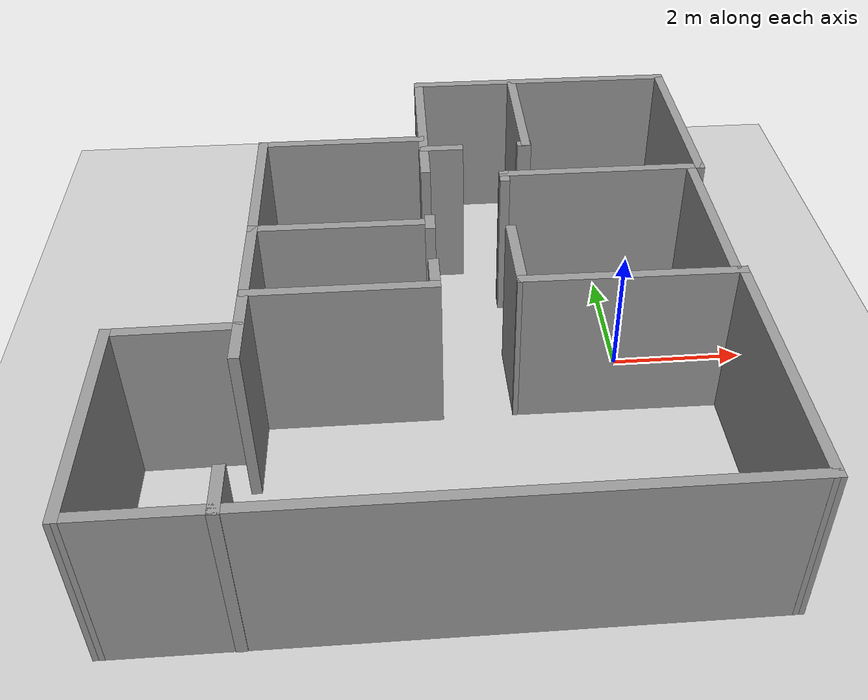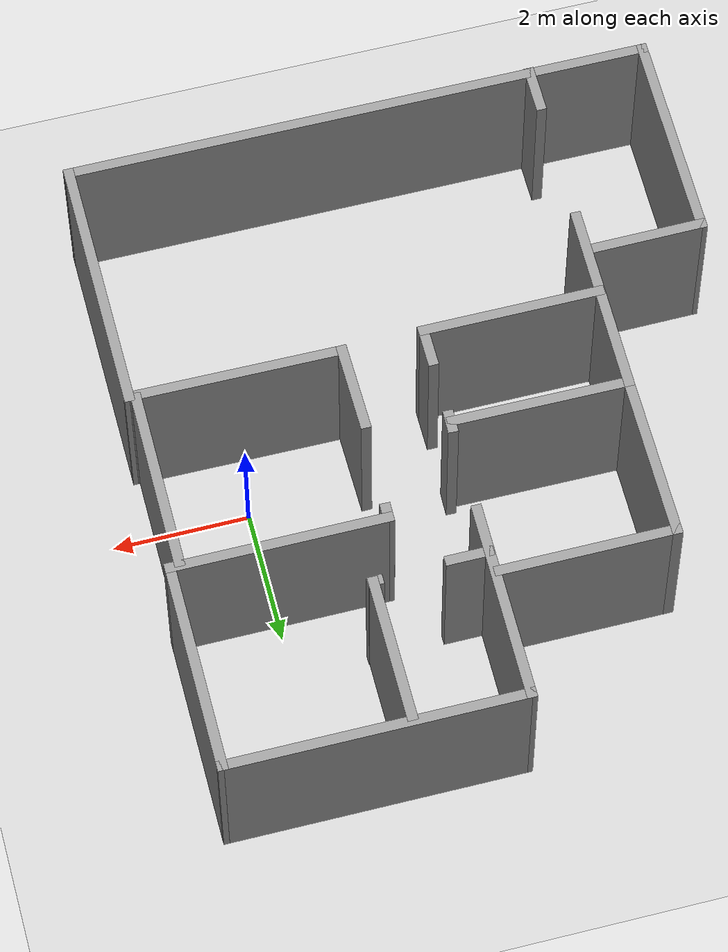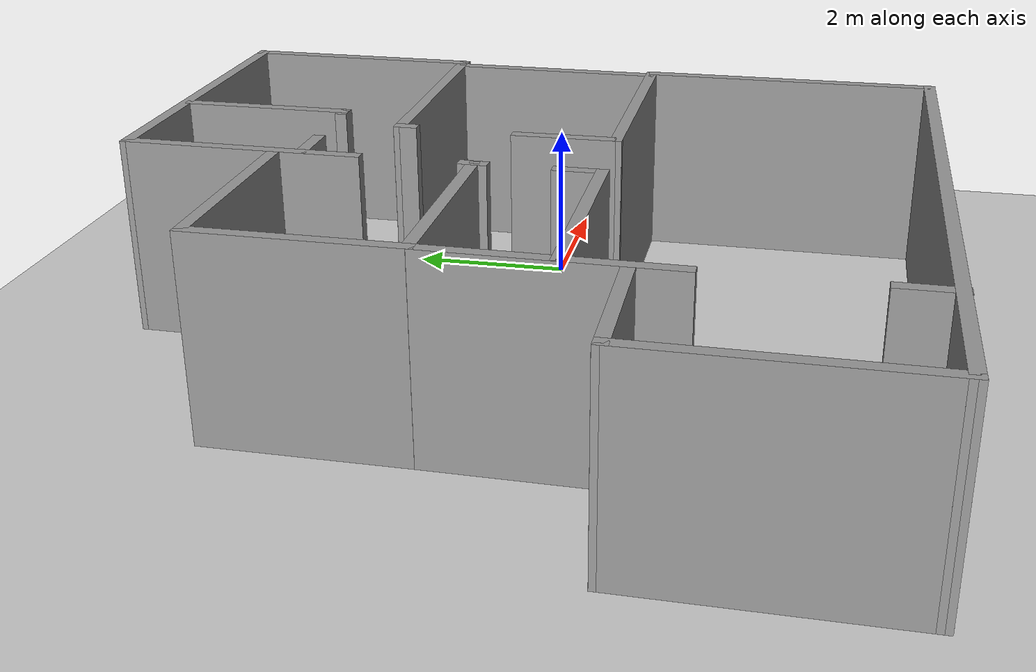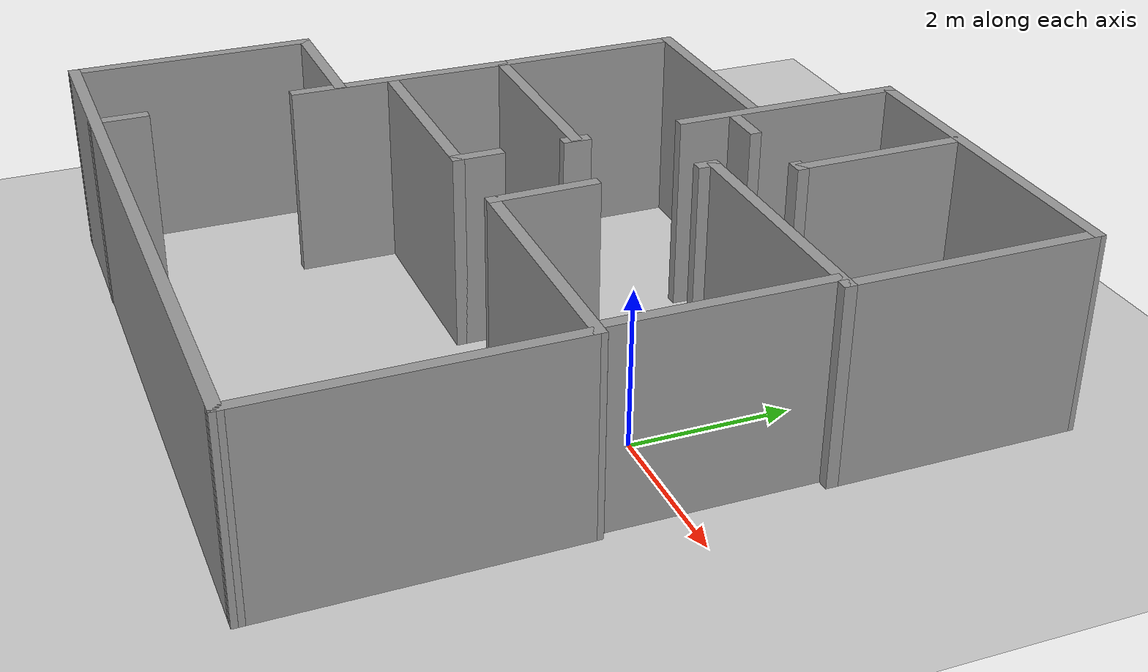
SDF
<sdf version="1.6">
 <world name="default">
  <light name="sun" type="directional">
   <pose>0 0 10 0 -0 0</pose>
   <diffuse>0.8 0.8 0.8 1</diffuse>
   <specular>0.1 0.1 0.1 1</specular>
   <attenuation>
    <range>1000</range>
    <constant>0.9</constant>
    <linear>0.01</linear>
    <quadratic>0.001</quadratic>
   </attenuation>
   <direction>-0.5 0.5 -1</direction>
  </light>
  <model name="ground_plane">
   <static>1</static>
   <link name="link">
    <collision name="collision">
     <geometry><plane><normal>0 0 1</normal><size>100 100</size></plane></geometry>
     <surface><friction><ode><mu>100</mu><mu2>50</mu2></ode></friction></surface>
    </collision>
    <visual name="visual">
     <cast_shadows>0</cast_shadows>
     <geometry><plane><normal>0 0 1</normal><size>100 100</size></plane></geometry>
     <material>
      <script><uri>file://media/materials/scripts/gazebo.material</uri><name>Gazebo/Grey</name></script>
     </material>
    </visual>
   </link>
  </model>
  <gravity>0 0 -9.8</gravity>
  <magnetic_field>6e-06 2.3e-05 -4.2e-05</magnetic_field>
  <atmosphere type="adiabatic"/>
  <physics name="default_physics" default="0" type="ode">
   <max_step_size>0.001</max_step_size>
   <real_time_factor>1</real_time_factor>
   <real_time_update_rate>1000</real_time_update_rate>
  </physics>
  <scene><ambient>0.4 0.4 0.4 1</ambient><background>0.7 0.7 0.7 1</background><shadows>1</shadows></scene>
  <spherical_coordinates>
   <surface_model>EARTH_WGS84</surface_model>
   <latitude_deg>0</latitude_deg>
   <longitude_deg>0</longitude_deg>
   <elevation>0</elevation>
   <heading_deg>0</heading_deg>
  </spherical_coordinates>
  <model name="Untitled">
   <pose>-2.84226 -0.011109 0 0 -0 0</pose>
   <link name="Wall_10">
    <collision name="Wall_10_Collision">
     <geometry><box><size>0.69412 0.15 2.5</size></box></geometry>
     <pose>0 0 1.25 0 -0 0</pose>
    </collision>
    <visual name="Wall_10_Visual">
     <pose>0 0 1.25 0 -0 0</pose>
     <geometry><box><size>0.69412 0.15 2.5</size></box></geometry>
     <material>
      <script><uri>file://media/materials/scripts/gazebo.material</uri><name>Gazebo/Grey</name></script>
      <ambient>1 1 1 1</ambient>
     </material>
    </visual>
    <pose>0.289757 2.58538 0 0 0 -0.000402</pose>
   </link>
   <link name="Wall_12">
    <collision name="Wall_12_Collision">
     <geometry><box><size>0.224792 0.15 2.5</size></box></geometry>
     <pose>0 0 1.25 0 -0 0</pose>
    </collision>
    <visual name="Wall_12_Visual">
     <pose>0 0 1.25 0 -0 0</pose>
     <geometry><box><size>0.224792 0.15 2.5</size></box></geometry>
     <material>
      <script><uri>file://media/materials/scripts/gazebo.material</uri><name>Gazebo/Grey</name></script>
      <ambient>1 1 1 1</ambient>
     </material>
    </visual>
    <pose>1.63247 2.62874 0 0 -0 0.006204</pose>
   </link>
   <link name="Wall_13">
    <collision name="Wall_13_Collision">
     <geometry><box><size>2.22391 0.15 2.5</size></box></geometry>
     <pose>0 0 1.25 0 -0 0</pose>
    </collision>
    <visual name="Wall_13_Visual">
     <pose>0 0 1.25 0 -0 0</pose>
     <geometry><box><size>2.22391 0.15 2.5</size></box></geometry>
     <material>
      <script><uri>file://media/materials/scripts/gazebo.material</uri><name>Gazebo/Grey</name></script>
      <ambient>1 1 1 1</ambient>
     </material>
    </visual>
    <pose>1.66118 3.67462 0 0 -0 1.5708</pose>
   </link>
   <link name="Wall_15">
    <collision name="Wall_15_Collision">
     <geometry><box><size>0.297697 0.15 2.5</size></box></geometry>
     <pose>0 0 1.25 0 -0 0</pose>
    </collision>
    <visual name="Wall_15_Visual">
     <pose>0 0 1.25 0 -0 0</pose>
     <geometry><box><size>0.297697 0.15 2.5</size></box></geometry>
     <material>
      <script><uri>file://media/materials/scripts/gazebo.material</uri><name>Gazebo/Grey</name></script>
      <ambient>1 1 1 1</ambient>
     </material>
    </visual>
    <pose>1.21315 1.65975 0 0 0 -1.58605</pose>
   </link>
   <link name="Wall_17">
    <collision name="Wall_17_Collision">
     <geometry><box><size>2.70246 0.15 2.5</size></box></geometry>
     <pose>0 0 1.25 0 -0 0</pose>
    </collision>
    <visual name="Wall_17_Visual">
     <pose>0 0 1.25 0 -0 0</pose>
     <geometry><box><size>2.70246 0.15 2.5</size></box></geometry>
     <material>
      <script><uri>file://media/materials/scripts/gazebo.material</uri><name>Gazebo/Grey</name></script>
      <ambient>1 1 1 1</ambient>
     </material>
    </visual>
    <pose>-1.30093 0.504889 0 0 -0 3.13641</pose>
   </link>
   <link name="Wall_18">
    <collision name="Wall_18_Collision">
     <geometry><box><size>2.54376 0.15 2.5</size></box></geometry>
     <pose>0 0 1.25 0 -0 0</pose>
    </collision>
    <visual name="Wall_18_Visual">
     <pose>0 0 1.25 0 -0 0</pose>
     <geometry><box><size>2.54376 0.15 2.5</size></box></geometry>
     <material>
      <script><uri>file://media/materials/scripts/gazebo.material</uri><name>Gazebo/Grey</name></script>
      <ambient>1 1 1 1</ambient>
     </material>
    </visual>
    <pose>-2.57714 1.70836 0 0 -0 1.5708</pose>
   </link>
   <link name="Wall_19">
    <collision name="Wall_19_Collision">
     <geometry><box><size>2.67598 0.15 2.5</size></box></geometry>
     <pose>0 0 1.25 0 -0 0</pose>
    </collision>
    <visual name="Wall_19_Visual">
     <pose>0 0 1.25 0 -0 0</pose>
     <geometry><box><size>2.67598 0.15 2.5</size></box></geometry>
     <material>
      <script><uri>file://media/materials/scripts/gazebo.material</uri><name>Gazebo/Grey</name></script>
      <ambient>1 1 1 1</ambient>
     </material>
    </visual>
    <pose>-1.31415 2.90523 0 0 -0 0</pose>
   </link>
   <link name="Wall_23">
    <collision name="Wall_23_Collision">
     <geometry><box><size>0.354254 0.15 2.5</size></box></geometry>
     <pose>0 0 1.25 0 -0 0</pose>
    </collision>
    <visual name="Wall_23_Visual">
     <pose>0 0 1.25 0 -0 0</pose>
     <geometry><box><size>0.354254 0.15 2.5</size></box></geometry>
     <material>
      <script><uri>file://media/materials/scripts/gazebo.material</uri><name>Gazebo/Grey</name></script>
      <ambient>1 1 1 1</ambient>
     </material>
    </visual>
    <pose>-0.001208 0.497595 0 0 0 -1.60304</pose>
   </link>
   <link name="Wall_25">
    <collision name="Wall_25_Collision">
     <geometry><box><size>0.654348 0.15 2.5</size></box></geometry>
     <pose>0 0 1.25 0 -0 0</pose>
    </collision>
    <visual name="Wall_25_Visual">
     <pose>0 0 1.25 0 -0 0</pose>
     <geometry><box><size>0.654348 0.15 2.5</size></box></geometry>
     <material>
      <script><uri>file://media/materials/scripts/gazebo.material</uri><name>Gazebo/Grey</name></script>
      <ambient>1 1 1 1</ambient>
     </material>
    </visual>
    <pose>-0.005215 -0.753078 0 0 0 -1.5708</pose>
   </link>
   <link name="Wall_26">
    <collision name="Wall_26_Collision">
     <geometry><box><size>2.72391 0.15 2.5</size></box></geometry>
     <pose>0 0 1.25 0 -0 0</pose>
    </collision>
    <visual name="Wall_26_Visual">
     <pose>0 0 1.25 0 -0 0</pose>
     <geometry><box><size>2.72391 0.15 2.5</size></box></geometry>
     <material>
      <script><uri>file://media/materials/scripts/gazebo.material</uri><name>Gazebo/Grey</name></script>
      <ambient>1 1 1 1</ambient>
     </material>
    </visual>
    <pose>-1.29217 -1.00525 0 0 -0 3.14159</pose>
   </link>
   <link name="Wall_28">
    <collision name="Wall_28_Collision">
     <geometry><box><size>2.9243 0.15 2.5</size></box></geometry>
     <pose>0 0 1.25 0 -0 0</pose>
    </collision>
    <visual name="Wall_28_Visual">
     <pose>0 0 1.25 0 -0 0</pose>
     <geometry><box><size>2.9243 0.15 2.5</size></box></geometry>
     <material>
      <script><uri>file://media/materials/scripts/gazebo.material</uri><name>Gazebo/Grey</name></script>
      <ambient>1 1 1 1</ambient>
     </material>
    </visual>
    <pose>-2.58866 -0.875603 0 0 0 -1.5791</pose>
   </link>
   <link name="Wall_3">
    <collision name="Wall_3_Collision">
     <geometry><box><size>4.43762 0.15 2.5</size></box></geometry>
     <pose>0 0 1.25 0 -0 0</pose>
    </collision>
    <visual name="Wall_3_Visual">
     <pose>0 0 1.25 0 -0 0</pose>
     <geometry><box><size>4.43762 0.15 2.5</size></box></geometry>
     <material>
      <script><uri>file://media/materials/scripts/gazebo.material</uri><name>Gazebo/Grey</name></script>
      <ambient>1 1 1 1</ambient>
     </material>
    </visual>
    <pose>2.16084 4.78743 0 0 0 -0.000903</pose>
   </link>
   <link name="Wall_30">
    <collision name="Wall_30_Collision">
     <geometry><box><size>0.736613 0.15 2.5</size></box></geometry>
     <pose>0 0 1.25 0 -0 0</pose>
    </collision>
    <visual name="Wall_30_Visual">
     <pose>0 0 1.25 0 -0 0</pose>
     <geometry><box><size>0.736613 0.15 2.5</size></box></geometry>
     <material>
      <script><uri>file://media/materials/scripts/gazebo.material</uri><name>Gazebo/Grey</name></script>
      <ambient>1 1 1 1</ambient>
     </material>
    </visual>
    <pose>-2.60244 -4.49634 0 0 0 -1.5708</pose>
   </link>
   <link name="Wall_32">
    <collision name="Wall_32_Collision">
     <geometry><box><size>1.82904 0.15 2.5</size></box></geometry>
     <pose>0 0 1.25 0 -0 0</pose>
    </collision>
    <visual name="Wall_32_Visual">
     <pose>0 0 1.25 0 -0 0</pose>
     <geometry><box><size>1.82904 0.15 2.5</size></box></geometry>
     <material>
      <script><uri>file://media/materials/scripts/gazebo.material</uri><name>Gazebo/Grey</name></script>
      <ambient>1 1 1 1</ambient>
     </material>
    </visual>
    <pose>-3.45344 -1.70184 0 0 0 -3.13474</pose>
   </link>
   <link name="Wall_33">
    <collision name="Wall_33_Collision">
     <geometry><box><size>3.22052 0.15 2.5</size></box></geometry>
     <pose>0 0 1.25 0 -0 0</pose>
    </collision>
    <visual name="Wall_33_Visual">
     <pose>0 0 1.25 0 -0 0</pose>
     <geometry><box><size>3.22052 0.15 2.5</size></box></geometry>
     <material>
      <script><uri>file://media/materials/scripts/gazebo.material</uri><name>Gazebo/Grey</name></script>
      <ambient>1 1 1 1</ambient>
     </material>
    </visual>
    <pose>-4.29869 -3.24284 0 0 0 -1.57454</pose>
   </link>
   <link name="Wall_34">
    <collision name="Wall_34_Collision">
     <geometry><box><size>8.71751 0.15 2.5</size></box></geometry>
     <pose>0 0 1.25 0 -0 0</pose>
    </collision>
    <visual name="Wall_34_Visual">
     <pose>0 0 1.25 0 -0 0</pose>
     <geometry><box><size>8.71751 0.15 2.5</size></box></geometry>
     <material>
      <script><uri>file://media/materials/scripts/gazebo.material</uri><name>Gazebo/Grey</name></script>
      <ambient>1 1 1 1</ambient>
     </material>
    </visual>
    <pose>-0.02069 -4.78384 0 0 0 -0.001342</pose>
   </link>
   <link name="Wall_35">
    <collision name="Wall_35_Collision">
     <geometry><box><size>3.93352 0.15 2.5</size></box></geometry>
     <pose>0 0 1.25 0 -0 0</pose>
    </collision>
    <visual name="Wall_35_Visual">
     <pose>0 0 1.25 0 -0 0</pose>
     <geometry><box><size>3.93352 0.15 2.5</size></box></geometry>
     <material>
      <script><uri>file://media/materials/scripts/gazebo.material</uri><name>Gazebo/Grey</name></script>
      <ambient>1 1 1 1</ambient>
     </material>
    </visual>
    <pose>4.25731 -2.89784 0 0 -0 1.57384</pose>
   </link>
   <link name="Wall_36">
    <collision name="Wall_36_Collision">
     <geometry><box><size>3.22059 0.15 2.5</size></box></geometry>
     <pose>0 0 1.25 0 -0 0</pose>
    </collision>
    <visual name="Wall_36_Visual">
     <pose>0 0 1.25 0 -0 0</pose>
     <geometry><box><size>3.22059 0.15 2.5</size></box></geometry>
     <material>
      <script><uri>file://media/materials/scripts/gazebo.material</uri><name>Gazebo/Grey</name></script>
      <ambient>1 1 1 1</ambient>
     </material>
    </visual>
    <pose>2.71631 -0.994587 0 0 -0 3.1341</pose>
   </link>
   <link name="Wall_37">
    <collision name="Wall_37_Collision">
     <geometry><box><size>1.36623 0.15 2.5</size></box></geometry>
     <pose>0 0 1.25 0 -0 0</pose>
    </collision>
    <visual name="Wall_37_Visual">
     <pose>0 0 1.25 0 -0 0</pose>
     <geometry><box><size>1.36623 0.15 2.5</size></box></geometry>
     <material>
      <script><uri>file://media/materials/scripts/gazebo.material</uri><name>Gazebo/Grey</name></script>
      <ambient>1 1 1 1</ambient>
     </material>
    </visual>
    <pose>1.17237 -0.375034 0 0 -0 1.58508</pose>
   </link>
   <link name="Wall_4">
    <collision name="Wall_4_Collision">
     <geometry><box><size>3.20219 0.15 2.5</size></box></geometry>
     <pose>0 0 1.25 0 -0 0</pose>
    </collision>
    <visual name="Wall_4_Visual">
     <pose>0 0 1.25 0 -0 0</pose>
     <geometry><box><size>3.20219 0.15 2.5</size></box></geometry>
     <material>
      <script><uri>file://media/materials/scripts/gazebo.material</uri><name>Gazebo/Grey</name></script>
      <ambient>1 1 1 1</ambient>
     </material>
    </visual>
    <pose>4.30465 3.25941 0 0 0 -1.5708</pose>
   </link>
   <link name="Wall_41">
    <collision name="Wall_41_Collision">
     <geometry><box><size>2.79322 0.15 2.5</size></box></geometry>
     <pose>0 0 1.25 0 -0 0</pose>
    </collision>
    <visual name="Wall_41_Visual">
     <pose>0 0 1.25 0 -0 0</pose>
     <geometry><box><size>2.79322 0.15 2.5</size></box></geometry>
     <material>
      <script><uri>file://media/materials/scripts/gazebo.material</uri><name>Gazebo/Grey</name></script>
      <ambient>1 1 1 1</ambient>
     </material>
    </visual>
    <pose>4.15994 0.354299 0 0 0 -1.57328</pose>
   </link>
   <link name="Wall_5">
    <collision name="Wall_5_Collision">
     <geometry><box><size>3.24037 0.15 2.5</size></box></geometry>
     <pose>0 0 1.25 0 -0 0</pose>
    </collision>
    <visual name="Wall_5_Visual">
     <pose>0 0 1.25 0 -0 0</pose>
     <geometry><box><size>3.24037 0.15 2.5</size></box></geometry>
     <material>
      <script><uri>file://media/materials/scripts/gazebo.material</uri><name>Gazebo/Grey</name></script>
      <ambient>1 1 1 1</ambient>
     </material>
    </visual>
    <pose>2.75947 1.73345 0 0 -0 3.1415</pose>
   </link>
   <link name="Wall_8">
    <collision name="Wall_8_Collision">
     <geometry><box><size>3.0136 0.15 2.5</size></box></geometry>
     <pose>0 0 1.25 0 -0 0</pose>
    </collision>
    <visual name="Wall_8_Visual">
     <pose>0 0 1.25 0 -0 0</pose>
     <geometry><box><size>3.0136 0.15 2.5</size></box></geometry>
     <material>
      <script><uri>file://media/materials/scripts/gazebo.material</uri><name>Gazebo/Grey</name></script>
      <ambient>1 1 1 1</ambient>
     </material>
    </visual>
    <pose>0.008462 3.35759 0 0 0 -1.57678</pose>
   </link>
   <static>1</static>
  </model>
 </world>
</sdf>
